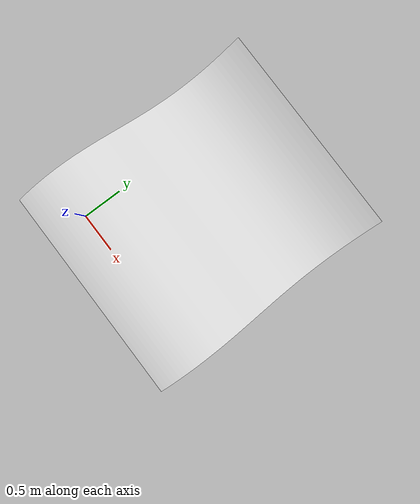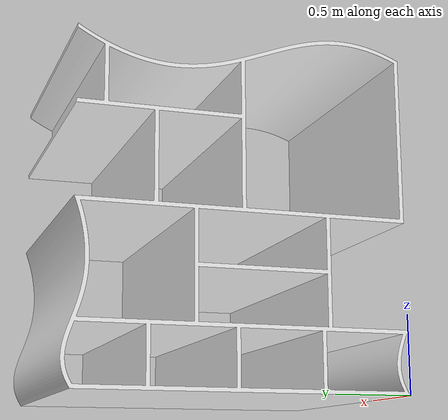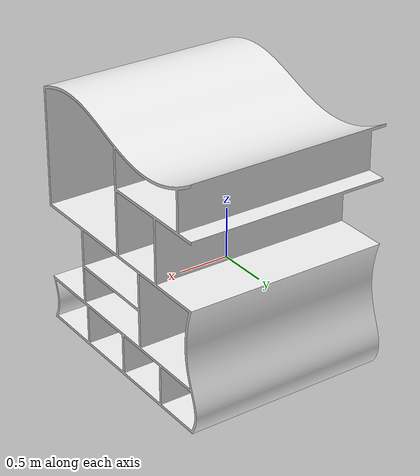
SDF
<?xml version='1.0'?>
<sdf version="1.5">
  <model name="shelf"> <!-- Very important to change-->
    <static>true</static>
    <pose>0 0 0 0 0 0</pose> <!-- Translation: X Y Z and Rotation: Roll Pitch Yaw (In Radian)-->
    <link name="body">

    <inertial>
    <mass>0</mass>
      <inertia>
        <ixx>0</ixx>
        <ixy>0</ixy>
        <ixz>0</ixz>
        <iyy>0</iyy>
        <iyz>0</iyz>
        <izz>0</izz>
      </inertia>
    </inertial>

       <collision name="collision"> <!-- You can use mesh like below -->
        <geometry>
          <mesh><!-- Very important to change-->
             <uri>/home/sorox23/robotic_ws/master_thesis_ws/src/property_based_tester/environment/models/shelf/meshes/shelf.stl</uri>
             <scale>0.001 0.001 0.001</scale>
          </mesh>
        </geometry>
      </collision>

      <visual name="visual">
        <geometry>
          <mesh><!-- Very important to change-->
             <uri>/home/sorox23/robotic_ws/master_thesis_ws/src/property_based_tester/environment/models/shelf/meshes/shelf.stl</uri>
             <scale>0.001 0.001 0.001</scale>
          </mesh>
        </geometry>

        <material>
          <script> <!-- Very important to change-->
             <uri>/home/sorox23/robotic_ws/master_thesis_ws/src/property_based_tester/environment/models/shelf/materials/scripts</uri>
             <uri>/home/sorox23/robotic_ws/master_thesis_ws/src/property_based_tester/environment/models/shelf/materials/textures</uri>
             <name>PR2/White</name>
          </script>
        </material>
      </visual>

    </link>
  </model>
</sdf>
